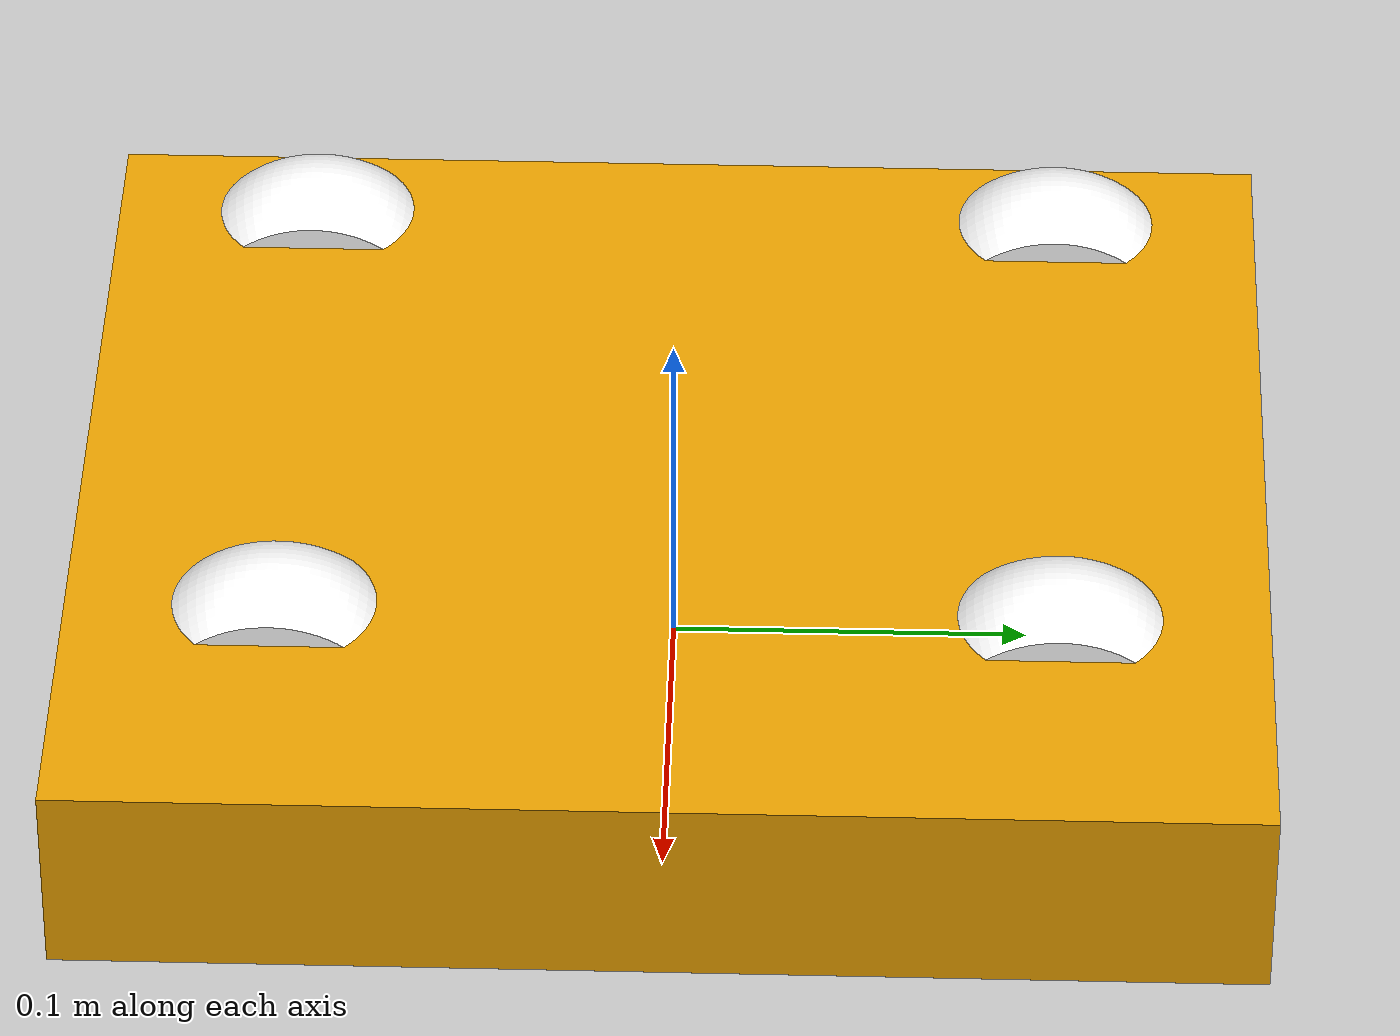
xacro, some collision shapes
<?xml version="1.0"?>
<!--Base of RufUS robot-->
<robot name="rufus" xmlns:xacro="http://ros.org/wiki/xacro">

    <xacro:property name="PI" value="3.1415926535897931"/>

    <!--Constants for robot dimensions-->
    <xacro:property name="base_length" value="0.330"    />
    <xacro:property name="base_width" value="0.290"     />
    <xacro:property name="base_height" value="0.057"    />
    <xacro:property name="wheel_dia" value="0.080"      />
    <xacro:property name="wheel_width" value="0.055"    />

    <!--Frame link-->
    <link name="frame_link">

        <visual>
            <origin xyz="0.0 0.0 0.0285" rpy="0.0 0.0 0.0" />
            <geometry>
                <mesh filename="package://base_description/mesh/Base_CAD.dae" />
            </geometry>
        </visual>

        <collision>
            <origin xyz="0.0 0.0 0.0285" rpy="0.0 0.0 0.0"/>
            <geometry>
                <box size="0.290 0.330 0.057"/>
            </geometry>
        </collision>

        <inertial>
            <origin xyz="0.0 0.0 0.0285" rpy="0.0 0.0 0.0"/>
            <!--TO ADJUST-->
            <mass value="1.0"/>
            <inertia ixx="0.0" ixy="0.0" ixz="0.0" iyy="0.0" iyz="0.0" izz="0.0"/>
        </inertial>

    </link>

    <gazebo reference="frame_link">
        <gravity>true</gravity>
    </gazebo>

    <!--Wheels joints-->
    <joint name="joint_FR" type="continuous">
        <origin xyz="0.090 0.1075 0.0285" rpy="0.0 0.0 0.0"/>
        <parent link="frame_link"/>
        <child link="wheel_FR"/>
        <axis xyz="1 0 0"/>
        <!--effort in NM, velocity in rad/sec-->
        <limit effort="2" velocity="20.5"/>
    </joint>

    <joint name="joint_FL" type="continuous">
        <origin xyz="-0.090 0.1075 0.0285" rpy="0.0 0.0 0.0"/>
        <parent link="frame_link"/>
        <child link="wheel_FL"/>
        <axis xyz="1 0 0"/>
        <!--effort in NM, velocity in rad/sec-->
        <limit effort="2" velocity="20.5"/>
    </joint>

    <joint name="joint_RR" type="continuous">
        <origin xyz="0.090 -0.1075 0.0285" rpy="0.0 0.0 0.0"/>
        <parent link="frame_link"/>
        <child link="wheel_RR"/>
        <axis xyz="1 0 0"/>
        <!--effort in NM, velocity in rad/sec-->
        <limit effort="2" velocity="20.5"/>
    </joint>

    <joint name="joint_RL" type="continuous">
        <origin xyz="-0.090 -0.1075 0.0285" rpy="0.0 0.0 0.0"/>
        <parent link="frame_link"/>
        <child link="wheel_RL"/>
        <axis xyz="1 0 0"/>
        <!--effort in NM, velocity in rad/sec-->
        <limit effort="2" velocity="20.5"/>
    </joint>

    <!--Wheels links-->
    <link name="wheel_FR">

        <visual>
            <!--TO ADJUST-->
            <origin xyz="0.0 0.0 0.0" rpy="0.0 0.0 0.0"/>
            <geometry>
                <mesh filename="package://base_description/mesh/Wheel_CAD.dae" />
            </geometry>
        </visual>

        <collision>
            <!--TO ADJUST-->
            <origin xyz="0.0 0.0 0.0" rpy="0.0 0.0 0.0"/>
            <geometry>
                <cylinder radius="0.040" length="0.0275"/>
            </geometry>
        </collision>

        <inertial>
            <!--TO ADJUST-->
            <origin xyz="0.0 0.0 0.0" rpy="0.0 0.0 0.0" />
            <mass value="0.0"/>
            <inertia ixx="0.0" ixy="0.0" ixz="0.0" iyy="0.0" iyz="0.0" izz="0.0"/>
        </inertial>

    </link>

    <gazebo reference="wheel_FR">
        <gravity>true</gravity>
    </gazebo>

    <link name="wheel_FL">

        <visual>
            <!--TO ADJUST-->
            <origin xyz="0.0 0.0 0.0" rpy="0.0 0.0 0.0"/>
            <geometry>
                <mesh filename="package://base_description/mesh/Wheel_CAD.dae" />
            </geometry>
        </visual>

        <collision>
            <!--TO ADJUST-->
            <origin xyz="0.0 0.0 0.0" rpy="0.0 0.0 0.0"/>
            <geometry>
                <cylinder radius="0.040" length="0.0275"/>
            </geometry>
        </collision>

        <inertial>
            <!--TO ADJUST-->
            <origin xyz="0.0 0.0 0.0" rpy="0.0 0.0 0.0" />
            <mass value="0.0"/>
            <inertia ixx="0.0" ixy="0.0" ixz="0.0" iyy="0.0" iyz="0.0" izz="0.0"/>
        </inertial>

    </link>

    <gazebo reference="wheel_FL">
        <gravity>true</gravity>
    </gazebo>

    <link name="wheel_RR">

        <visual>
            <!--TO ADJUST-->
            <origin xyz="0.0 0.0 0.0" rpy="0.0 0.0 0.0"/>
            <geometry>
                <mesh filename="package://base_description/mesh/Wheel_CAD.dae" />
            </geometry>
        </visual>

        <collision>
            <!--TO ADJUST-->
            <origin xyz="0.0 0.0 0.0" rpy="0.0 0.0 0.0"/>
            <geometry>
                <cylinder radius="0.040" length="0.0275"/>
            </geometry>
        </collision>

        <inertial>
            <!--TO ADJUST-->
            <origin xyz="0.0 0.0 0.0" rpy="0.0 0.0 0.0" />
            <mass value="0.0"/>
            <inertia ixx="0.0" ixy="0.0" ixz="0.0" iyy="0.0" iyz="0.0" izz="0.0"/>
        </inertial>

    </link>

    <gazebo reference="wheel_RR">
        <gravity>true</gravity>
    </gazebo>

    <link name="wheel_RL">

        <visual>
            <!--TO ADJUST-->
            <origin xyz="0.0 0.0 0.0" rpy="0.0 0.0 0.0"/>
            <geometry>
                <mesh filename="package://base_description/mesh/Wheel_CAD.dae" />
            </geometry>
        </visual>

        <collision>
            <!--TO ADJUST-->
            <origin xyz="0.0 0.0 0.0" rpy="0.0 0.0 0.0"/>
            <geometry>
                <cylinder radius="0.040" length="0.0275"/>
            </geometry>
        </collision>

        <inertial>
            <!--TO ADJUST-->
            <origin xyz="0.0 0.0 0.0" rpy="0.0 0.0 0.0" />
            <mass value="0.0"/>
            <inertia ixx="0.0" ixy="0.0" ixz="0.0" iyy="0.0" iyz="0.0" izz="0.0"/>
        </inertial>

    </link>

    <gazebo reference="wheel_RL">
        <gravity>true</gravity>
    </gazebo>

</robot>
